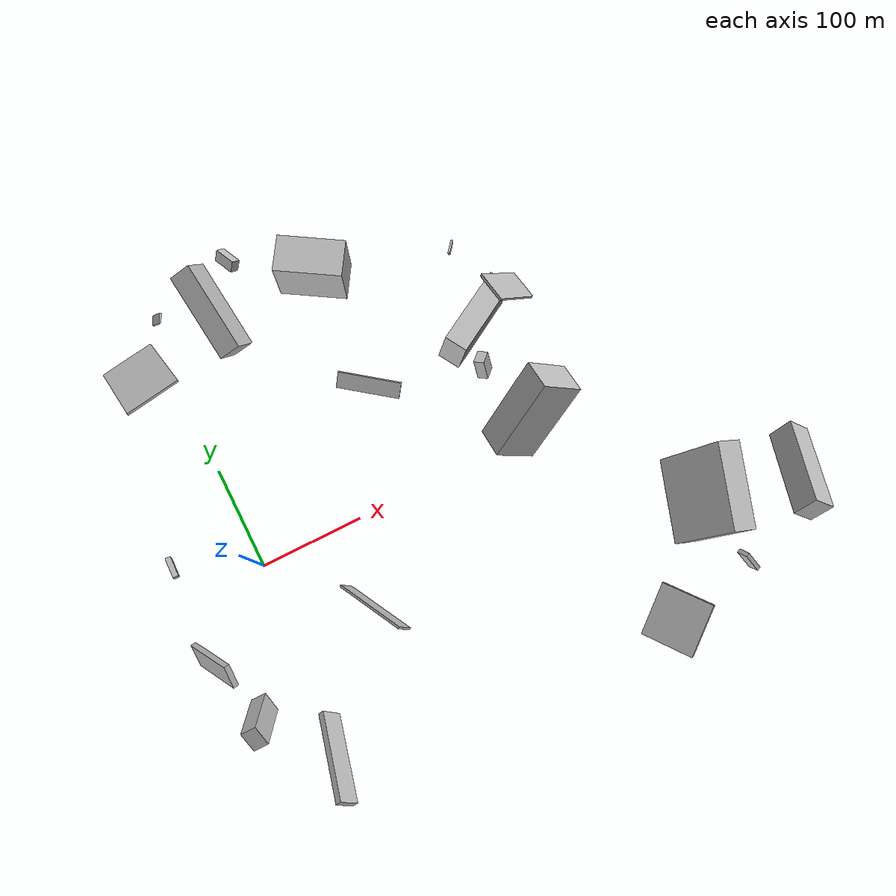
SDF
<sdf version="1.6">
 <world name="default">
  <scene>
   <sky><clouds><speed>12</speed></clouds></sky>
   <ambient>0.4 0.4 0.4 1</ambient>
   <background>0.7 0.7 0.7 1</background>
   <shadows>1</shadows>
  </scene>
  <gravity>0 0 -9.8066</gravity>
  <magnetic_field>6e-06 2.3e-05 -4.2e-05</magnetic_field>
  <physics default="0" name="default_physics" type="ode">
   <ode>
    <solver>
     <type>quick</type>
     <iters>10</iters>
     <sor>1.0</sor>
     <use_dynamic_moi_rescaling>0</use_dynamic_moi_rescaling>
    </solver>
    <constraints>
     <cfm>0</cfm>
     <erp>0.2</erp>
     <contact_max_correcting_vel>100</contact_max_correcting_vel>
     <contact_surface_layer>0.001</contact_surface_layer>
    </constraints>
   </ode>
   <max_step_size>0.004</max_step_size>
   <real_time_factor>1</real_time_factor>
   <real_time_update_rate>250</real_time_update_rate>
  </physics>
  <light name="sun" type="directional">
   <pose>0 0 10 0 0 0</pose>
   <diffuse>0.8 0.8 0.8 1</diffuse>
   <specular>0.2 0.2 0.2 1</specular>
   <attenuation>
    <range>1000</range>
    <constant>0.9</constant>
    <linear>0.01</linear>
    <quadratic>0.001</quadratic>
   </attenuation>
   <direction>-0.5 0.1 -0.9</direction>
  </light>
  <model name="building_1">
   <static>0</static>
   <pose>155.07719931041422 208.95858003140538 46.89169228523785 -3.054581993586191 -1.4945209493952454 0.9351452113912512</pose>
   <link name="link">
    <gravity>0</gravity>
    <pose>0 0 17.5 0 0 0</pose>
    <collision name="collision"><geometry><box><size>49 63 35</size></box></geometry></collision>
    <visual name="visual">
     <cast_shadows>0</cast_shadows>
     <geometry><box><size>49 63 35</size></box></geometry>
     <material>
      <script>
       <uri>model://HANNAS_wall/materials/scripts</uri>
       <uri>model://HANNAS_wall/materials/textures</uri>
       <name>vrc/HANNAS_wall</name>
      </script>
     </material>
    </visual>
   </link>
  </model>
  <model name="building_2">
   <static>0</static>
   <pose>293.84150447163665 10.71724150746979 10.508842116631914 -2.6927958596159676 0.4506577710977507 0.4693792186990984</pose>
   <link name="link">
    <gravity>0</gravity>
    <pose>0 0 9.0 0 0 0</pose>
    <collision name="collision"><geometry><box><size>3 13 18</size></box></geometry></collision>
    <visual name="visual">
     <cast_shadows>0</cast_shadows>
     <geometry><box><size>3 13 18</size></box></geometry>
     <material>
      <script>
       <uri>model://HANNAS_wall/materials/scripts</uri>
       <uri>model://HANNAS_wall/materials/textures</uri>
       <name>vrc/HANNAS_wall</name>
      </script>
     </material>
    </visual>
   </link>
  </model>
  <model name="building_3">
   <static>0</static>
   <pose>380.0418351960353 -123.16965338200501 43.27895844263034 2.05430694936855 -0.0425670877407954 1.261297908439048</pose>
   <link name="link">
    <gravity>0</gravity>
    <pose>0 0 12.5 0 0 0</pose>
    <collision name="collision"><geometry><box><size>80 80 25</size></box></geometry></collision>
    <visual name="visual">
     <cast_shadows>0</cast_shadows>
     <geometry><box><size>80 80 25</size></box></geometry>
     <material>
      <script>
       <uri>model://HANNAS_wall/materials/scripts</uri>
       <uri>model://HANNAS_wall/materials/textures</uri>
       <name>vrc/HANNAS_wall</name>
      </script>
     </material>
    </visual>
   </link>
  </model>
  <model name="building_4">
   <static>0</static>
   <pose>301.0740294476329 79.26192031591168 179.36059169468336 0.08612365338618665 0.6696178886386992 -2.920288113232263</pose>
   <link name="link">
    <gravity>0</gravity>
    <pose>0 0 24.5 0 0 0</pose>
    <collision name="collision"><geometry><box><size>2 25 49</size></box></geometry></collision>
    <visual name="visual">
     <cast_shadows>0</cast_shadows>
     <geometry><box><size>2 25 49</size></box></geometry>
     <material>
      <script>
       <uri>model://HANNAS_wall/materials/scripts</uri>
       <uri>model://HANNAS_wall/materials/textures</uri>
       <name>vrc/HANNAS_wall</name>
      </script>
     </material>
    </visual>
   </link>
  </model>
  <model name="building_5">
   <static>0</static>
   <pose>-43.747727333571184 -121.76565606522972 101.50745613797308 2.0927433634523656 -0.266294480519649 -0.025370555685568768</pose>
   <link name="link">
    <gravity>0</gravity>
    <pose>0 0 9.5 0 0 0</pose>
    <collision name="collision"><geometry><box><size>14 46 19</size></box></geometry></collision>
    <visual name="visual">
     <cast_shadows>0</cast_shadows>
     <geometry><box><size>14 46 19</size></box></geometry>
     <material>
      <script>
       <uri>model://HANNAS_wall/materials/scripts</uri>
       <uri>model://HANNAS_wall/materials/textures</uri>
       <name>vrc/HANNAS_wall</name>
      </script>
     </material>
    </visual>
   </link>
  </model>
  <model name="building_6">
   <static>0</static>
   <pose>399.2460207788748 -197.965390719909 18.980899263627187 -1.5595061409006372 0.776811043731383 -1.1140599615058815</pose>
   <link name="link">
    <gravity>0</gravity>
    <pose>0 0 2.0 0 0 0</pose>
    <collision name="collision"><geometry><box><size>26 11 4</size></box></geometry></collision>
    <visual name="visual">
     <cast_shadows>0</cast_shadows>
     <geometry><box><size>26 11 4</size></box></geometry>
     <material>
      <script>
       <uri>model://HANNAS_wall/materials/scripts</uri>
       <uri>model://HANNAS_wall/materials/textures</uri>
       <name>vrc/HANNAS_wall</name>
      </script>
     </material>
    </visual>
   </link>
  </model>
  <model name="building_7">
   <static>0</static>
   <pose>76.37096843115971 206.78094839127334 97.8723947477432 2.6572280100589394 -1.0762756257450792 -2.6108401920064024</pose>
   <link name="link">
    <gravity>0</gravity>
    <pose>0 0 10.5 0 0 0</pose>
    <collision name="collision"><geometry><box><size>26 80 21</size></box></geometry></collision>
    <visual name="visual">
     <cast_shadows>0</cast_shadows>
     <geometry><box><size>26 80 21</size></box></geometry>
     <material>
      <script>
       <uri>model://HANNAS_wall/materials/scripts</uri>
       <uri>model://HANNAS_wall/materials/textures</uri>
       <name>vrc/HANNAS_wall</name>
      </script>
     </material>
    </visual>
   </link>
  </model>
  <model name="building_8">
   <static>0</static>
   <pose>238.3796383681697 81.20648865010514 85.36702052518955 -2.8404774242021635 -1.3008586592883602 0.26071669459923935</pose>
   <link name="link">
    <gravity>0</gravity>
    <pose>0 0 40.0 0 0 0</pose>
    <collision name="collision"><geometry><box><size>34 21 80</size></box></geometry></collision>
    <visual name="visual">
     <cast_shadows>0</cast_shadows>
     <geometry><box><size>34 21 80</size></box></geometry>
     <material>
      <script>
       <uri>model://HANNAS_wall/materials/scripts</uri>
       <uri>model://HANNAS_wall/materials/textures</uri>
       <name>vrc/HANNAS_wall</name>
      </script>
     </material>
    </visual>
   </link>
  </model>
  <model name="building_9">
   <static>0</static>
   <pose>186.57360800467114 89.0060140167449 18.564485342455857 -1.5443038018161375 -0.5036260087724173 0.9139980635152618</pose>
   <link name="link">
    <gravity>0</gravity>
    <pose>0 0 30.0 0 0 0</pose>
    <collision name="collision"><geometry><box><size>15 4 60</size></box></geometry></collision>
    <visual name="visual">
     <cast_shadows>0</cast_shadows>
     <geometry><box><size>15 4 60</size></box></geometry>
     <material>
      <script>
       <uri>model://HANNAS_wall/materials/scripts</uri>
       <uri>model://HANNAS_wall/materials/textures</uri>
       <name>vrc/HANNAS_wall</name>
      </script>
     </material>
    </visual>
   </link>
  </model>
  <model name="building_10">
   <static>0</static>
   <pose>-11.576810007044951 174.20234624125368 105.00317786241827 0.6896131775711359 -0.07589374298812612 -2.9588953717023285</pose>
   <link name="link">
    <gravity>0</gravity>
    <pose>0 0 1.0 0 0 0</pose>
    <collision name="collision"><geometry><box><size>49 80 2</size></box></geometry></collision>
    <visual name="visual">
     <cast_shadows>0</cast_shadows>
     <geometry><box><size>49 80 2</size></box></geometry>
     <material>
      <script>
       <uri>model://HANNAS_wall/materials/scripts</uri>
       <uri>model://HANNAS_wall/materials/textures</uri>
       <name>vrc/HANNAS_wall</name>
      </script>
     </material>
    </visual>
   </link>
  </model>
  <model name="building_11">
   <static>0</static>
   <pose>246.20167664082297 -10.705133627880013 72.64113130637126 -0.5352488253035912 0.6846909749892472 -0.32997890197459706</pose>
   <link name="link">
    <gravity>0</gravity>
    <pose>0 0 40.0 0 0 0</pose>
    <collision name="collision"><geometry><box><size>42 29 80</size></box></geometry></collision>
    <visual name="visual">
     <cast_shadows>0</cast_shadows>
     <geometry><box><size>42 29 80</size></box></geometry>
     <material>
      <script>
       <uri>model://HANNAS_wall/materials/scripts</uri>
       <uri>model://HANNAS_wall/materials/textures</uri>
       <name>vrc/HANNAS_wall</name>
      </script>
     </material>
    </visual>
   </link>
  </model>
  <model name="building_12">
   <static>0</static>
   <pose>466.68955961461324 -112.36299957358584 84.17156382433011 -1.066841070182561 -0.6113626999808924 2.475385148321869</pose>
   <link name="link">
    <gravity>0</gravity>
    <pose>0 0 40.0 0 0 0</pose>
    <collision name="collision"><geometry><box><size>23 23 80</size></box></geometry></collision>
    <visual name="visual">
     <cast_shadows>0</cast_shadows>
     <geometry><box><size>23 23 80</size></box></geometry>
     <material>
      <script>
       <uri>model://HANNAS_wall/materials/scripts</uri>
       <uri>model://HANNAS_wall/materials/textures</uri>
       <name>vrc/HANNAS_wall</name>
      </script>
     </material>
    </visual>
   </link>
  </model>
  <model name="building_13">
   <static>0</static>
   <pose>99.52423538010429 198.85794121689074 188.40883092143423 2.2904845259151623 0.28009240536282043 1.967188145358898</pose>
   <link name="link">
    <gravity>0</gravity>
    <pose>0 0 3.5 0 0 0</pose>
    <collision name="collision"><geometry><box><size>19 9 7</size></box></geometry></collision>
    <visual name="visual">
     <cast_shadows>0</cast_shadows>
     <geometry><box><size>19 9 7</size></box></geometry>
     <material>
      <script>
       <uri>model://HANNAS_wall/materials/scripts</uri>
       <uri>model://HANNAS_wall/materials/textures</uri>
       <name>vrc/HANNAS_wall</name>
      </script>
     </material>
    </visual>
   </link>
  </model>
  <model name="building_14">
   <static>0</static>
   <pose>252.4272242987161 55.001600644650274 130.06764389655984 -2.820014034752412 -0.37724632015208687 -2.3566716658668048</pose>
   <link name="link">
    <gravity>0</gravity>
    <pose>0 0 10.0 0 0 0</pose>
    <collision name="collision"><geometry><box><size>12 9 20</size></box></geometry></collision>
    <visual name="visual">
     <cast_shadows>0</cast_shadows>
     <geometry><box><size>12 9 20</size></box></geometry>
     <material>
      <script>
       <uri>model://HANNAS_wall/materials/scripts</uri>
       <uri>model://HANNAS_wall/materials/textures</uri>
       <name>vrc/HANNAS_wall</name>
      </script>
     </material>
    </visual>
   </link>
  </model>
  <model name="building_15">
   <static>0</static>
   <pose>296.9189745327024 201.68120363704557 12.079631856271247 0.9371591035804383 -0.1165990699983989 -0.5158819957789771</pose>
   <link name="link">
    <gravity>0</gravity>
    <pose>0 0 11.5 0 0 0</pose>
    <collision name="collision"><geometry><box><size>2 3 23</size></box></geometry></collision>
    <visual name="visual">
     <cast_shadows>0</cast_shadows>
     <geometry><box><size>2 3 23</size></box></geometry>
     <material>
      <script>
       <uri>model://HANNAS_wall/materials/scripts</uri>
       <uri>model://HANNAS_wall/materials/textures</uri>
       <name>vrc/HANNAS_wall</name>
      </script>
     </material>
    </visual>
   </link>
  </model>
  <model name="building_16">
   <static>0</static>
   <pose>4.639330534600574 -149.33687795875954 56.29183367567247 -1.078273585040114 0.565800253027784 -3.0461566425183926</pose>
   <link name="link">
    <gravity>0</gravity>
    <pose>0 0 40.0 0 0 0</pose>
    <collision name="collision"><geometry><box><size>6 19 80</size></box></geometry></collision>
    <visual name="visual">
     <cast_shadows>0</cast_shadows>
     <geometry><box><size>6 19 80</size></box></geometry>
     <material>
      <script>
       <uri>model://HANNAS_wall/materials/scripts</uri>
       <uri>model://HANNAS_wall/materials/textures</uri>
       <name>vrc/HANNAS_wall</name>
      </script>
     </material>
    </visual>
   </link>
  </model>
  <model name="building_17">
   <static>0</static>
   <pose>62.82132373819163 -55.232731009736206 34.755601907349664 0.44788994695936296 0.9313562285140936 -0.530021557160986</pose>
   <link name="link">
    <gravity>0</gravity>
    <pose>0 0 40.0 0 0 0</pose>
    <collision name="collision"><geometry><box><size>15 2 80</size></box></geometry></collision>
    <visual name="visual">
     <cast_shadows>0</cast_shadows>
     <geometry><box><size>15 2 80</size></box></geometry>
     <material>
      <script>
       <uri>model://HANNAS_wall/materials/scripts</uri>
       <uri>model://HANNAS_wall/materials/textures</uri>
       <name>vrc/HANNAS_wall</name>
      </script>
     </material>
    </visual>
   </link>
  </model>
  <model name="building_18">
   <static>0</static>
   <pose>329.7485618112712 -197.92822268395872 52.02665019408842 2.2650907474730957 1.108223456687352 -0.19706831636165634</pose>
   <link name="link">
    <gravity>0</gravity>
    <pose>0 0 25.0 0 0 0</pose>
    <collision name="collision"><geometry><box><size>5 49 50</size></box></geometry></collision>
    <visual name="visual">
     <cast_shadows>0</cast_shadows>
     <geometry><box><size>5 49 50</size></box></geometry>
     <material>
      <script>
       <uri>model://HANNAS_wall/materials/scripts</uri>
       <uri>model://HANNAS_wall/materials/textures</uri>
       <name>vrc/HANNAS_wall</name>
      </script>
     </material>
    </visual>
   </link>
  </model>
  <model name="building_19">
   <static>0</static>
   <pose>12.475102646454557 261.29624761177104 14.084185494149217 -1.592603050104445 0.7540543811012549 2.6540211801934417</pose>
   <link name="link">
    <gravity>0</gravity>
    <pose>0 0 5.0 0 0 0</pose>
    <collision name="collision"><geometry><box><size>12 2 10</size></box></geometry></collision>
    <visual name="visual">
     <cast_shadows>0</cast_shadows>
     <geometry><box><size>12 2 10</size></box></geometry>
     <material>
      <script>
       <uri>model://HANNAS_wall/materials/scripts</uri>
       <uri>model://HANNAS_wall/materials/textures</uri>
       <name>vrc/HANNAS_wall</name>
      </script>
     </material>
    </visual>
   </link>
  </model>
  <model name="building_20">
   <static>0</static>
   <pose>-64.12322901489544 15.687459299037126 57.837748902532574 -2.308925627591948 -1.4328019447190166 0.7247912806804496</pose>
   <link name="link">
    <gravity>0</gravity>
    <pose>0 0 9.5 0 0 0</pose>
    <collision name="collision"><geometry><box><size>6 5 19</size></box></geometry></collision>
    <visual name="visual">
     <cast_shadows>0</cast_shadows>
     <geometry><box><size>6 5 19</size></box></geometry>
     <material>
      <script>
       <uri>model://HANNAS_wall/materials/scripts</uri>
       <uri>model://HANNAS_wall/materials/textures</uri>
       <name>vrc/HANNAS_wall</name>
      </script>
     </material>
    </visual>
   </link>
  </model>
  <model name="building_21">
   <static>0</static>
   <pose>-62.12512418969008 -59.84527769813553 75.17431020949928 2.240843046170734 0.4316468517444922 0.18943564060146809</pose>
   <link name="link">
    <gravity>0</gravity>
    <pose>0 0 11.0 0 0 0</pose>
    <collision name="collision"><geometry><box><size>5 63 22</size></box></geometry></collision>
    <visual name="visual">
     <cast_shadows>0</cast_shadows>
     <geometry><box><size>5 63 22</size></box></geometry>
     <material>
      <script>
       <uri>model://HANNAS_wall/materials/scripts</uri>
       <uri>model://HANNAS_wall/materials/textures</uri>
       <name>vrc/HANNAS_wall</name>
      </script>
     </material>
    </visual>
   </link>
  </model>
 </world>
</sdf>
